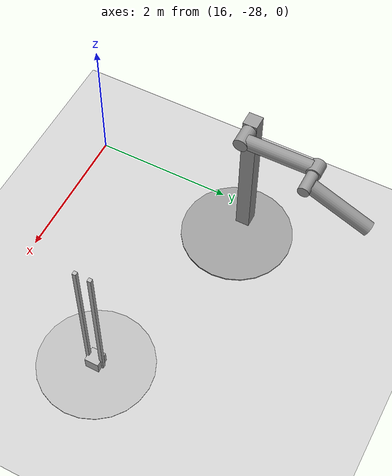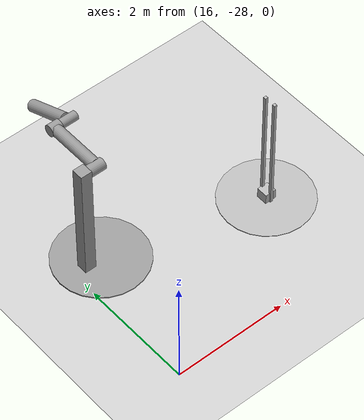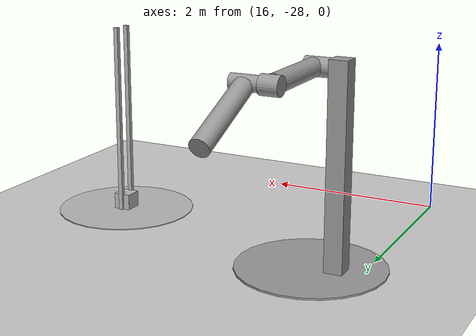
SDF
<sdf version="1.7">
 <world name="default">
  <model name="ground_plane">
   <static>1</static>
   <link name="link">
    <collision name="collision">
     <geometry><plane><normal>0 0 1</normal><size>100 100</size></plane></geometry>
     <surface><friction><ode><mu>100</mu><mu2>50</mu2></ode></friction></surface>
    </collision>
    <visual name="visual">
     <cast_shadows>0</cast_shadows>
     <geometry><plane><normal>0 0 1</normal><size>100 100</size></plane></geometry>
     <material>
      <script><uri>file://media/materials/scripts/gazebo.material</uri><name>Gazebo/Grey</name></script>
     </material>
    </visual>
   </link>
  </model>
  <model name="mass_on_rails">
   <link name="base">
    <inertial>
     <mass>100</mass>
     <inertia><ixx>1</ixx><ixy>0</ixy><ixz>0</ixz><iyy>1</iyy><iyz>0</iyz><izz>1</izz></inertia>
    </inertial>
    <visual name="vis_base">
     <pose>0 0 0.01 0 -0 0</pose>
     <geometry><cylinder><radius>0.8</radius><length>0.01</length></cylinder></geometry>
    </visual>
    <collision name="col_base">
     <pose>0 0 0.01 0 -0 0</pose>
     <geometry><cylinder><radius>0.8</radius><length>0.01</length></cylinder></geometry>
    </collision>
    <visual name="vis_rail1">
     <pose>0 0.1 1.1 0 -0 0</pose>
     <geometry><box><size>0.05 0.05 2.2</size></box></geometry>
    </visual>
    <collision name="col_rail1">
     <pose>0 0.1 1.1 0 -0 0</pose>
     <geometry><box><size>0.05 0.05 2.2</size></box></geometry>
    </collision>
    <visual name="vis_rail2">
     <pose>0 -0.1 1.1 0 -0 0</pose>
     <geometry><box><size>0.05 0.05 2.2</size></box></geometry>
    </visual>
    <collision name="col_rail2">
     <pose>0 -0.1 1.1 0 -0 0</pose>
     <geometry><box><size>0.05 0.05 2.2</size></box></geometry>
    </collision>
   </link>
   <link name="mass">
    <inertial>
     <mass>0.1</mass>
     <pose>0 0 0.1 0 -0 0</pose>
     <inertia><ixx>0.00067</ixx><ixy>0</ixy><ixz>0</ixz><iyy>0.00067</iyy><iyz>0</iyz><izz>0.00067</izz></inertia>
    </inertial>
    <visual name="visual">
     <pose>0 0 0.1 0 -0 0</pose>
     <geometry><box><size>0.2 0.2 0.2</size></box></geometry>
    </visual>
    <collision name="collision">
     <pose>0 0 0.1 0 -0 0</pose>
     <geometry><box><size>0.2 0.2 0.2</size></box></geometry>
    </collision>
   </link>
   <joint name="joint" type="prismatic">
    <parent>base</parent>
    <child>mass</child>
    <axis>
     <dynamics>
      <damping>0.01</damping>
      <friction>0.01</friction>
      <spring_reference>0</spring_reference>
      <spring_stiffness>0</spring_stiffness>
     </dynamics>
     <xyz>0 0 1</xyz>
     <limit><lower>0</lower><upper>2</upper></limit>
    </axis>
   </joint>
   <pose>19.2459 -26.2599 0.0105 0 0 -0.006769</pose>
  </model>
  <model name="double_pendulum_with_base">
   <link name="base">
    <inertial>
     <mass>100</mass>
     <inertia><ixx>1</ixx><ixy>0</ixy><ixz>0</ixz><iyy>1</iyy><iyz>0</iyz><izz>1</izz></inertia>
    </inertial>
    <visual name="vis_plate_on_ground">
     <pose>0 0 0.01 0 -0 0</pose>
     <geometry><cylinder><radius>0.8</radius><length>0.02</length></cylinder></geometry>
     <material>
      <script><uri>file://media/materials/scripts/gazebo.material</uri><name>Gazebo/Grey</name></script>
     </material>
    </visual>
    <visual name="vis_pole">
     <pose>-0.275 0 1.1 0 -0 0</pose>
     <geometry><box><size>0.2 0.2 2.2</size></box></geometry>
     <material>
      <script><uri>file://media/materials/scripts/gazebo.material</uri><name>Gazebo/Grey</name></script>
     </material>
    </visual>
    <collision name="col_plate_on_ground">
     <pose>0 0 0.01 0 -0 0</pose>
     <geometry><cylinder><radius>0.8</radius><length>0.02</length></cylinder></geometry>
    </collision>
    <collision name="col_pole">
     <pose>-0.275 0 1.1 0 -0 0</pose>
     <geometry><box><size>0.2 0.2 2.2</size></box></geometry>
    </collision>
   </link>
   <link name="upper_link">
    <pose>0 0 2.1 -1.5708 0 0</pose>
    <inertial>
     <pose>0 0 0.5 0 -0 0</pose>
     <inertia><ixx>1</ixx><ixy>0</ixy><ixz>0</ixz><iyy>1</iyy><iyz>0</iyz><izz>1</izz></inertia>
     <mass>1</mass>
    </inertial>
    <visual name="vis_upper_joint">
     <pose>-0.05 0 0 3.14159 1.57079 3.14159</pose>
     <geometry><cylinder><radius>0.1</radius><length>0.3</length></cylinder></geometry>
     <material>
      <script><uri>file://media/materials/scripts/gazebo.material</uri><name>Gazebo/Grey</name></script>
     </material>
    </visual>
    <visual name="vis_lower_joint">
     <pose>0 0 1 3.14159 1.57079 3.14159</pose>
     <geometry><cylinder><radius>0.1</radius><length>0.2</length></cylinder></geometry>
     <material>
      <script><uri>file://media/materials/scripts/gazebo.material</uri><name>Gazebo/Grey</name></script>
     </material>
    </visual>
    <visual name="vis_cylinder">
     <pose>0 0 0.5 0 -0 0</pose>
     <geometry><cylinder><radius>0.1</radius><length>0.9</length></cylinder></geometry>
     <material>
      <script><uri>file://media/materials/scripts/gazebo.material</uri><name>Gazebo/Grey</name></script>
     </material>
    </visual>
    <collision name="col_upper_joint">
     <pose>-0.05 0 0 3.14159 1.57079 3.14159</pose>
     <geometry><cylinder><radius>0.1</radius><length>0.3</length></cylinder></geometry>
    </collision>
    <collision name="col_lower_joint">
     <pose>0 0 1 3.14159 1.57079 3.14159</pose>
     <geometry><cylinder><radius>0.1</radius><length>0.2</length></cylinder></geometry>
    </collision>
    <collision name="col_cylinder">
     <pose>0 0 0.5 0 -0 0</pose>
     <geometry><cylinder><radius>0.1</radius><length>0.9</length></cylinder></geometry>
    </collision>
   </link>
   <link name="lower_link">
    <pose>0.25 1 2.1 -2 0 0</pose>
    <inertial>
     <pose>0 0 0.5 0 -0 0</pose>
     <inertia><ixx>1</ixx><ixy>0</ixy><ixz>0</ixz><iyy>1</iyy><iyz>0</iyz><izz>1</izz></inertia>
     <mass>1</mass>
    </inertial>
    <visual name="vis_lower_joint">
     <pose>0 0 0 3.14159 1.57079 3.14159</pose>
     <geometry><cylinder><radius>0.08</radius><length>0.3</length></cylinder></geometry>
     <material>
      <script><uri>file://media/materials/scripts/gazebo.material</uri><name>Gazebo/Grey</name></script>
     </material>
    </visual>
    <visual name="vis_cylinder">
     <pose>0 0 0.5 0 -0 0</pose>
     <geometry><cylinder><radius>0.1</radius><length>0.9</length></cylinder></geometry>
     <material>
      <script><uri>file://media/materials/scripts/gazebo.material</uri><name>Gazebo/Grey</name></script>
     </material>
    </visual>
    <collision name="col_lower_joint">
     <pose>0 0 0 3.14159 1.57079 3.14159</pose>
     <geometry><cylinder><radius>0.08</radius><length>0.3</length></cylinder></geometry>
    </collision>
    <collision name="col_cylinder">
     <pose>0 0 0.5 0 -0 0</pose>
     <geometry><cylinder><radius>0.1</radius><length>0.9</length></cylinder></geometry>
    </collision>
   </link>
   <joint name="upper_joint" type="revolute">
    <parent>base</parent>
    <child>upper_link</child>
    <axis>
     <xyz>1 0 0</xyz>
     <limit><lower>-1e+16</lower><upper>1e+16</upper></limit>
     <dynamics><spring_reference>0</spring_reference><spring_stiffness>0</spring_stiffness></dynamics>
    </axis>
   </joint>
   <joint name="lower_joint" type="revolute">
    <parent>upper_link</parent>
    <child>lower_link</child>
    <axis>
     <xyz>1 0 0</xyz>
     <limit><lower>-1e+16</lower><upper>1e+16</upper></limit>
     <dynamics><spring_reference>0</spring_reference><spring_stiffness>0</spring_stiffness></dynamics>
    </axis>
   </joint>
   <pose>16.5188 -25.5325 0.010523 -1.3e-05 -2.4e-05 0.002881</pose>
  </model>
 </world>
</sdf>
